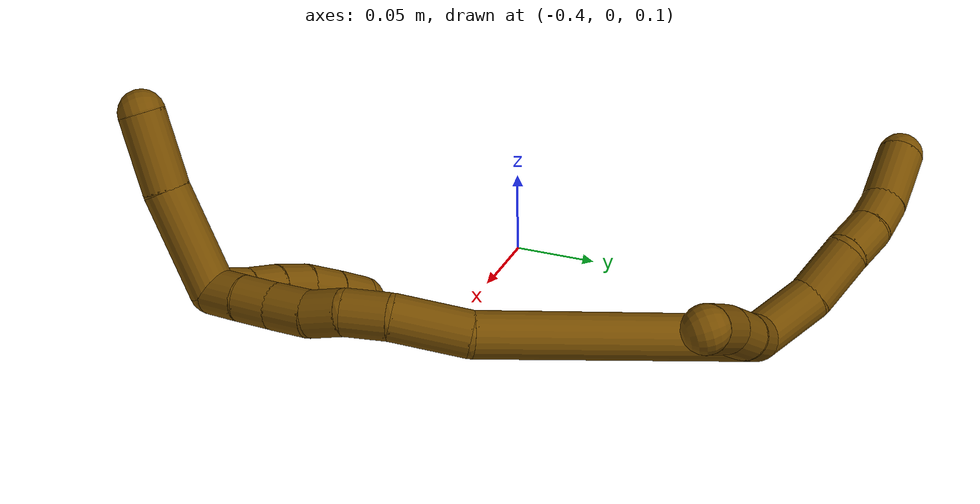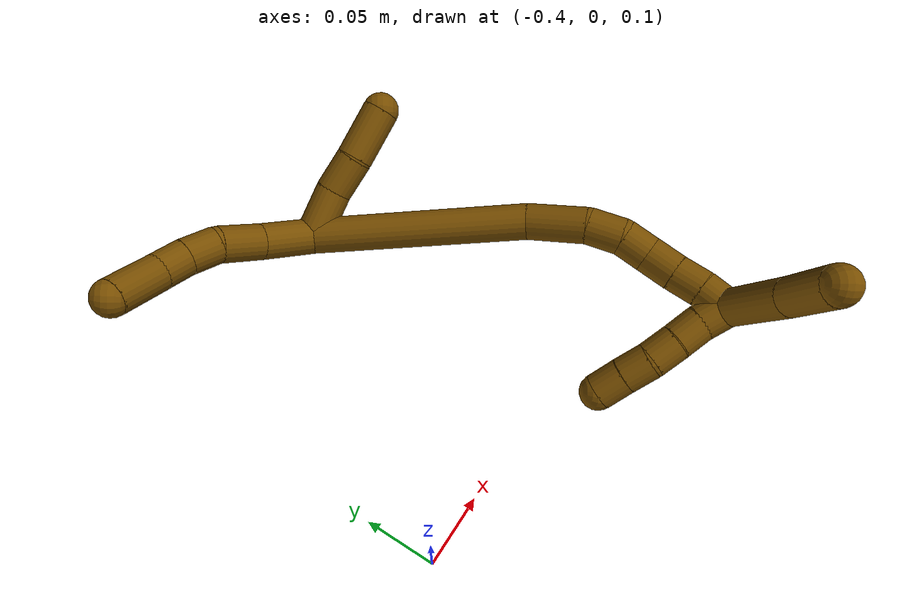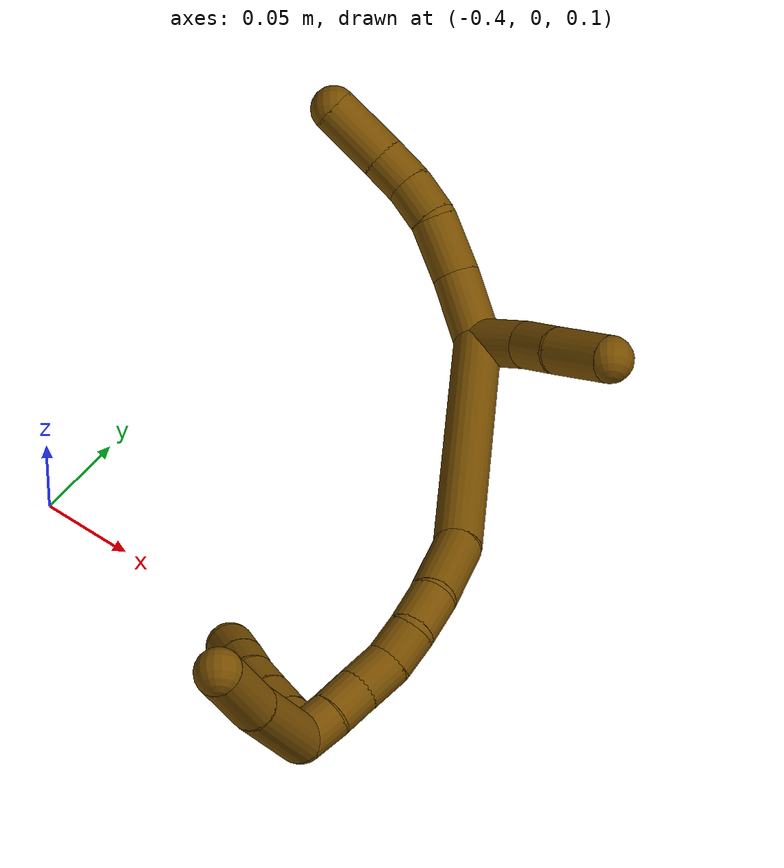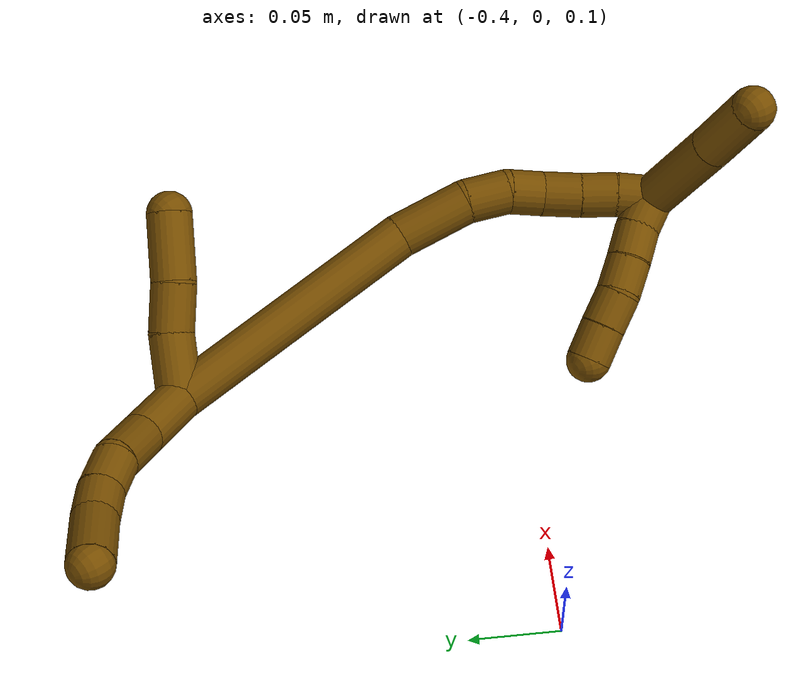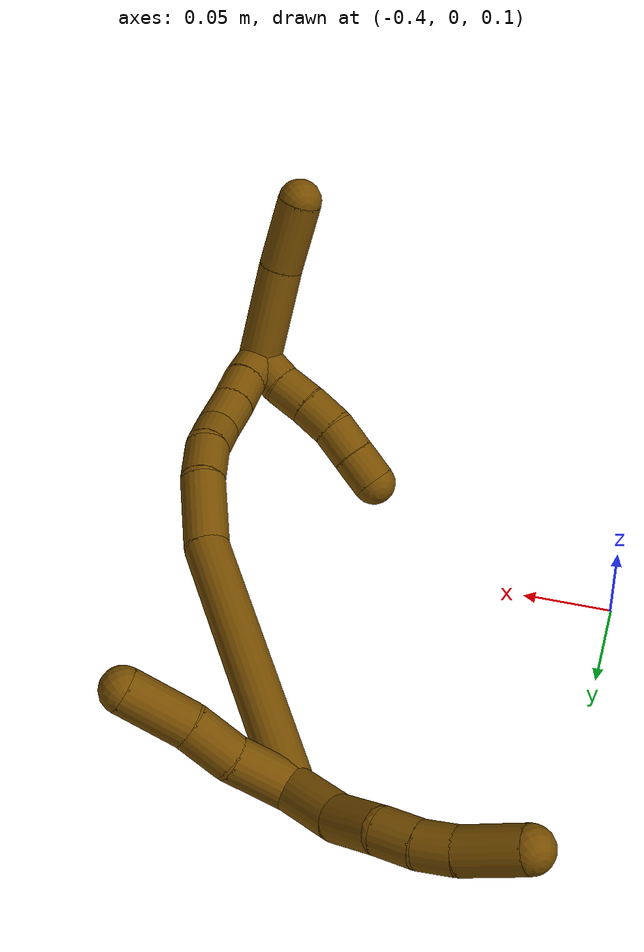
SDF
<sdf version="1.7">
 <world name="default">
  <model name="12">
   <static>0</static>
   <link name="12">
    <collision name="collision-cylinder-e_1_2_8">
     <pose>-0.006177 0.000164 0.017946 -0.009129 -0.331471 0.001527</pose>
     <geometry><cylinder><radius>0.0125</radius><length>0.03796</length></cylinder></geometry>
     <surface>
      <friction><ode><mu>1.16</mu><mu2>1.16</mu2><slip1>0</slip1><slip2>0</slip2></ode></friction>
      <contact><ode><kp>1e+06</kp><kd>1</kd><max_vel>0</max_vel><min_depth>0.001</min_depth></ode></contact>
     </surface>
    </collision>
    <visual name="visual-cylinder-e_1_2_8">
     <pose>-0.006177 0.000164 0.017946 -0.009129 -0.331471 0.001527</pose>
     <geometry><cylinder><radius>0.0125</radius><length>0.03796</length></cylinder></geometry>
     <material><ambient>0.466667 0.301961 0 1</ambient></material>
    </visual>
    <collision name="collision-cylinder-e_2_8_9">
     <pose>-0.020158 -0.001864 0.049777 0.156535 -0.50682 -0.040616</pose>
     <geometry><cylinder><radius>0.0125</radius><length>0.032156</length></cylinder></geometry>
     <surface>
      <friction><ode><mu>1.16</mu><mu2>1.16</mu2><slip1>0</slip1><slip2>0</slip2></ode></friction>
      <contact><ode><kp>1e+06</kp><kd>1</kd><max_vel>0</max_vel><min_depth>0.001</min_depth></ode></contact>
     </surface>
    </collision>
    <visual name="visual-cylinder-e_2_8_9">
     <pose>-0.020158 -0.001864 0.049777 0.156535 -0.50682 -0.040616</pose>
     <geometry><cylinder><radius>0.0125</radius><length>0.032156</length></cylinder></geometry>
     <material><ambient>0.466667 0.301961 0 1</ambient></material>
    </visual>
    <collision name="collision-cylinder-e_3_9_10">
     <pose>-0.033899 -0.002044 0.073163 -0.208536 -0.548685 0.058887</pose>
     <geometry><cylinder><radius>0.0125</radius><length>0.022766</length></cylinder></geometry>
     <surface>
      <friction><ode><mu>1.16</mu><mu2>1.16</mu2><slip1>0</slip1><slip2>0</slip2></ode></friction>
      <contact><ode><kp>1e+06</kp><kd>1</kd><max_vel>0</max_vel><min_depth>0.001</min_depth></ode></contact>
     </surface>
    </collision>
    <visual name="visual-cylinder-e_3_9_10">
     <pose>-0.033899 -0.002044 0.073163 -0.208536 -0.548685 0.058887</pose>
     <geometry><cylinder><radius>0.0125</radius><length>0.022766</length></cylinder></geometry>
     <material><ambient>0.466667 0.301961 0 1</ambient></material>
    </visual>
    <collision name="collision-cylinder-e_4_10_11">
     <pose>-0.046694 0.00189 0.090193 -0.250177 -0.723201 0.09505</pose>
     <geometry><cylinder><radius>0.0125</radius><length>0.020727</length></cylinder></geometry>
     <surface>
      <friction><ode><mu>1.16</mu><mu2>1.16</mu2><slip1>0</slip1><slip2>0</slip2></ode></friction>
      <contact><ode><kp>1e+06</kp><kd>1</kd><max_vel>0</max_vel><min_depth>0.001</min_depth></ode></contact>
     </surface>
    </collision>
    <visual name="visual-cylinder-e_4_10_11">
     <pose>-0.046694 0.00189 0.090193 -0.250177 -0.723201 0.09505</pose>
     <geometry><cylinder><radius>0.0125</radius><length>0.020727</length></cylinder></geometry>
     <material><ambient>0.466667 0.301961 0 1</ambient></material>
    </visual>
    <collision name="collision-cylinder-e_5_11_6">
     <pose>-0.067369 0.005073 0.109494 -0.106623 -0.862234 0.049081</pose>
     <geometry><cylinder><radius>0.0125</radius><length>0.036392</length></cylinder></geometry>
     <surface>
      <friction><ode><mu>1.16</mu><mu2>1.16</mu2><slip1>0</slip1><slip2>0</slip2></ode></friction>
      <contact><ode><kp>1e+06</kp><kd>1</kd><max_vel>0</max_vel><min_depth>0.001</min_depth></ode></contact>
     </surface>
    </collision>
    <visual name="visual-cylinder-e_5_11_6">
     <pose>-0.067369 0.005073 0.109494 -0.106623 -0.862234 0.049081</pose>
     <geometry><cylinder><radius>0.0125</radius><length>0.036392</length></cylinder></geometry>
     <material><ambient>0.466667 0.301961 0 1</ambient></material>
    </visual>
    <collision name="collision-cylinder-e_1_2_12">
     <pose>0.006181 -0.015153 -0.006405 1.97069 0.359382 0.534846</pose>
     <geometry><cylinder><radius>0.0125</radius><length>0.035148</length></cylinder></geometry>
     <surface>
      <friction><ode><mu>1.16</mu><mu2>1.16</mu2><slip1>0</slip1><slip2>0</slip2></ode></friction>
      <contact><ode><kp>1e+06</kp><kd>1</kd><max_vel>0</max_vel><min_depth>0.001</min_depth></ode></contact>
     </surface>
    </collision>
    <visual name="visual-cylinder-e_1_2_12">
     <pose>0.006181 -0.015153 -0.006405 1.97069 0.359382 0.534846</pose>
     <geometry><cylinder><radius>0.0125</radius><length>0.035148</length></cylinder></geometry>
     <material><ambient>0.466667 0.301961 0 1</ambient></material>
    </visual>
    <collision name="collision-cylinder-e_2_12_13">
     <pose>0.014993 -0.042026 -0.019157 2.06719 0.194938 0.325416</pose>
     <geometry><cylinder><radius>0.0125</radius><length>0.02717</length></cylinder></geometry>
     <surface>
      <friction><ode><mu>1.16</mu><mu2>1.16</mu2><slip1>0</slip1><slip2>0</slip2></ode></friction>
      <contact><ode><kp>1e+06</kp><kd>1</kd><max_vel>0</max_vel><min_depth>0.001</min_depth></ode></contact>
     </surface>
    </collision>
    <visual name="visual-cylinder-e_2_12_13">
     <pose>0.014993 -0.042026 -0.019157 2.06719 0.194938 0.325416</pose>
     <geometry><cylinder><radius>0.0125</radius><length>0.02717</length></cylinder></geometry>
     <material><ambient>0.466667 0.301961 0 1</ambient></material>
    </visual>
    <collision name="collision-cylinder-e_3_13_5">
     <pose>0.024068 -0.069475 -0.033631 2.04768 0.349029 0.563664</pose>
     <geometry><cylinder><radius>0.0125</radius><length>0.037682</length></cylinder></geometry>
     <surface>
      <friction><ode><mu>1.16</mu><mu2>1.16</mu2><slip1>0</slip1><slip2>0</slip2></ode></friction>
      <contact><ode><kp>1e+06</kp><kd>1</kd><max_vel>0</max_vel><min_depth>0.001</min_depth></ode></contact>
     </surface>
    </collision>
    <visual name="visual-cylinder-e_3_13_5">
     <pose>0.024068 -0.069475 -0.033631 2.04768 0.349029 0.563664</pose>
     <geometry><cylinder><radius>0.0125</radius><length>0.037682</length></cylinder></geometry>
     <material><ambient>0.466667 0.301961 0 1</ambient></material>
    </visual>
    <collision name="collision-cylinder-e_1_2_14">
     <pose>-0.017221 -0.019904 -0.071192 2.86897 -0.228882 -1.395</pose>
     <geometry><cylinder><radius>0.0125</radius><length>0.151803</length></cylinder></geometry>
     <surface>
      <friction><ode><mu>1.16</mu><mu2>1.16</mu2><slip1>0</slip1><slip2>0</slip2></ode></friction>
      <contact><ode><kp>1e+06</kp><kd>1</kd><max_vel>0</max_vel><min_depth>0.001</min_depth></ode></contact>
     </surface>
    </collision>
    <visual name="visual-cylinder-e_1_2_14">
     <pose>-0.017221 -0.019904 -0.071192 2.86897 -0.228882 -1.395</pose>
     <geometry><cylinder><radius>0.0125</radius><length>0.151803</length></cylinder></geometry>
     <material><ambient>0.466667 0.301961 0 1</ambient></material>
    </visual>
    <collision name="collision-cylinder-e_2_14_15">
     <pose>-0.044142 -0.044548 -0.160263 2.88243 -0.48297 -2.1683</pose>
     <geometry><cylinder><radius>0.0125</radius><length>0.041772</length></cylinder></geometry>
     <surface>
      <friction><ode><mu>1.16</mu><mu2>1.16</mu2><slip1>0</slip1><slip2>0</slip2></ode></friction>
      <contact><ode><kp>1e+06</kp><kd>1</kd><max_vel>0</max_vel><min_depth>0.001</min_depth></ode></contact>
     </surface>
    </collision>
    <visual name="visual-cylinder-e_2_14_15">
     <pose>-0.044142 -0.044548 -0.160263 2.88243 -0.48297 -2.1683</pose>
     <geometry><cylinder><radius>0.0125</radius><length>0.041772</length></cylinder></geometry>
     <material><ambient>0.466667 0.301961 0 1</ambient></material>
    </visual>
    <collision name="collision-cylinder-e_3_15_16">
     <pose>-0.05978 -0.048981 -0.188623 -3.11235 -0.515312 3.03073</pose>
     <geometry><cylinder><radius>0.0125</radius><length>0.0241</length></cylinder></geometry>
     <surface>
      <friction><ode><mu>1.16</mu><mu2>1.16</mu2><slip1>0</slip1><slip2>0</slip2></ode></friction>
      <contact><ode><kp>1e+06</kp><kd>1</kd><max_vel>0</max_vel><min_depth>0.001</min_depth></ode></contact>
     </surface>
    </collision>
    <visual name="visual-cylinder-e_3_15_16">
     <pose>-0.05978 -0.048981 -0.188623 -3.11235 -0.515312 3.03073</pose>
     <geometry><cylinder><radius>0.0125</radius><length>0.0241</length></cylinder></geometry>
     <material><ambient>0.466667 0.301961 0 1</ambient></material>
    </visual>
    <collision name="collision-cylinder-e_4_16_17">
     <pose>-0.070466 -0.04533 -0.207337 -2.75566 -0.490691 1.81628</pose>
     <geometry><cylinder><radius>0.0125</radius><length>0.020151</length></cylinder></geometry>
     <surface>
      <friction><ode><mu>1.16</mu><mu2>1.16</mu2><slip1>0</slip1><slip2>0</slip2></ode></friction>
      <contact><ode><kp>1e+06</kp><kd>1</kd><max_vel>0</max_vel><min_depth>0.001</min_depth></ode></contact>
     </surface>
    </collision>
    <visual name="visual-cylinder-e_4_16_17">
     <pose>-0.070466 -0.04533 -0.207337 -2.75566 -0.490691 1.81628</pose>
     <geometry><cylinder><radius>0.0125</radius><length>0.020151</length></cylinder></geometry>
     <material><ambient>0.466667 0.301961 0 1</ambient></material>
    </visual>
    <collision name="collision-cylinder-e_5_17_18">
     <pose>-0.082498 -0.039477 -0.223454 -2.83373 -0.721858 2.3616</pose>
     <geometry><cylinder><radius>0.0125</radius><length>0.022046</length></cylinder></geometry>
     <surface>
      <friction><ode><mu>1.16</mu><mu2>1.16</mu2><slip1>0</slip1><slip2>0</slip2></ode></friction>
      <contact><ode><kp>1e+06</kp><kd>1</kd><max_vel>0</max_vel><min_depth>0.001</min_depth></ode></contact>
     </surface>
    </collision>
    <visual name="visual-cylinder-e_5_17_18">
     <pose>-0.082498 -0.039477 -0.223454 -2.83373 -0.721858 2.3616</pose>
     <geometry><cylinder><radius>0.0125</radius><length>0.022046</length></cylinder></geometry>
     <material><ambient>0.466667 0.301961 0 1</ambient></material>
    </visual>
    <collision name="collision-cylinder-e_6_18_19">
     <pose>-0.09642 -0.035261 -0.238692 -2.91312 -0.721335 2.55098</pose>
     <geometry><cylinder><radius>0.0125</radius><length>0.020105</length></cylinder></geometry>
     <surface>
      <friction><ode><mu>1.16</mu><mu2>1.16</mu2><slip1>0</slip1><slip2>0</slip2></ode></friction>
      <contact><ode><kp>1e+06</kp><kd>1</kd><max_vel>0</max_vel><min_depth>0.001</min_depth></ode></contact>
     </surface>
    </collision>
    <visual name="visual-cylinder-e_6_18_19">
     <pose>-0.09642 -0.035261 -0.238692 -2.91312 -0.721335 2.55098</pose>
     <geometry><cylinder><radius>0.0125</radius><length>0.020105</length></cylinder></geometry>
     <material><ambient>0.466667 0.301961 0 1</ambient></material>
    </visual>
    <collision name="collision-cylinder-e_7_19_1">
     <pose>-0.109958 -0.030963 -0.252822 -2.77679 -0.760254 2.27662</pose>
     <geometry><cylinder><radius>0.0125</radius><length>0.020024</length></cylinder></geometry>
     <surface>
      <friction><ode><mu>1.16</mu><mu2>1.16</mu2><slip1>0</slip1><slip2>0</slip2></ode></friction>
      <contact><ode><kp>1e+06</kp><kd>1</kd><max_vel>0</max_vel><min_depth>0.001</min_depth></ode></contact>
     </surface>
    </collision>
    <visual name="visual-cylinder-e_7_19_1">
     <pose>-0.109958 -0.030963 -0.252822 -2.77679 -0.760254 2.27662</pose>
     <geometry><cylinder><radius>0.0125</radius><length>0.020024</length></cylinder></geometry>
     <material><ambient>0.466667 0.301961 0 1</ambient></material>
    </visual>
    <collision name="collision-cylinder-e_1_1_20">
     <pose>-0.117471 -0.022419 -0.25159 -0.639318 -0.061409 0.020333</pose>
     <geometry><cylinder><radius>0.0125</radius><length>0.02</length></cylinder></geometry>
     <surface>
      <friction><ode><mu>1.16</mu><mu2>1.16</mu2><slip1>0</slip1><slip2>0</slip2></ode></friction>
      <contact><ode><kp>1e+06</kp><kd>1</kd><max_vel>0</max_vel><min_depth>0.001</min_depth></ode></contact>
     </surface>
    </collision>
    <visual name="visual-cylinder-e_1_1_20">
     <pose>-0.117471 -0.022419 -0.25159 -0.639318 -0.061409 0.020333</pose>
     <geometry><cylinder><radius>0.0125</radius><length>0.02</length></cylinder></geometry>
     <material><ambient>0.466667 0.301961 0 1</ambient></material>
    </visual>
    <collision name="collision-cylinder-e_2_20_21">
     <pose>-0.120316 -0.010307 -0.236022 -0.683591 -0.225057 0.080362</pose>
     <geometry><cylinder><radius>0.0125</radius><length>0.02</length></cylinder></geometry>
     <surface>
      <friction><ode><mu>1.16</mu><mu2>1.16</mu2><slip1>0</slip1><slip2>0</slip2></ode></friction>
      <contact><ode><kp>1e+06</kp><kd>1</kd><max_vel>0</max_vel><min_depth>0.001</min_depth></ode></contact>
     </surface>
    </collision>
    <visual name="visual-cylinder-e_2_20_21">
     <pose>-0.120316 -0.010307 -0.236022 -0.683591 -0.225057 0.080362</pose>
     <geometry><cylinder><radius>0.0125</radius><length>0.02</length></cylinder></geometry>
     <material><ambient>0.466667 0.301961 0 1</ambient></material>
    </visual>
    <collision name="collision-cylinder-e_3_21_22">
     <pose>-0.124063 0.002335 -0.221005 -0.715701 -0.15208 0.056965</pose>
     <geometry><cylinder><radius>0.0125</radius><length>0.02</length></cylinder></geometry>
     <surface>
      <friction><ode><mu>1.16</mu><mu2>1.16</mu2><slip1>0</slip1><slip2>0</slip2></ode></friction>
      <contact><ode><kp>1e+06</kp><kd>1</kd><max_vel>0</max_vel><min_depth>0.001</min_depth></ode></contact>
     </surface>
    </collision>
    <visual name="visual-cylinder-e_3_21_22">
     <pose>-0.124063 0.002335 -0.221005 -0.715701 -0.15208 0.056965</pose>
     <geometry><cylinder><radius>0.0125</radius><length>0.02</length></cylinder></geometry>
     <material><ambient>0.466667 0.301961 0 1</ambient></material>
    </visual>
    <collision name="collision-cylinder-e_4_22_23">
     <pose>-0.12515 0.015679 -0.206281 -0.756589 0.042795 -0.017011</pose>
     <geometry><cylinder><radius>0.0125</radius><length>0.02</length></cylinder></geometry>
     <surface>
      <friction><ode><mu>1.16</mu><mu2>1.16</mu2><slip1>0</slip1><slip2>0</slip2></ode></friction>
      <contact><ode><kp>1e+06</kp><kd>1</kd><max_vel>0</max_vel><min_depth>0.001</min_depth></ode></contact>
     </surface>
    </collision>
    <visual name="visual-cylinder-e_4_22_23">
     <pose>-0.12515 0.015679 -0.206281 -0.756589 0.042795 -0.017011</pose>
     <geometry><cylinder><radius>0.0125</radius><length>0.02</length></cylinder></geometry>
     <material><ambient>0.466667 0.301961 0 1</ambient></material>
    </visual>
    <collision name="collision-cylinder-e_5_23_4">
     <pose>-0.124301 0.029708 -0.192059 -0.80057 0.042114 -0.017822</pose>
     <geometry><cylinder><radius>0.0125</radius><length>0.02</length></cylinder></geometry>
     <surface>
      <friction><ode><mu>1.16</mu><mu2>1.16</mu2><slip1>0</slip1><slip2>0</slip2></ode></friction>
      <contact><ode><kp>1e+06</kp><kd>1</kd><max_vel>0</max_vel><min_depth>0.001</min_depth></ode></contact>
     </surface>
    </collision>
    <visual name="visual-cylinder-e_5_23_4">
     <pose>-0.124301 0.029708 -0.192059 -0.80057 0.042114 -0.017822</pose>
     <geometry><cylinder><radius>0.0125</radius><length>0.02</length></cylinder></geometry>
     <material><ambient>0.466667 0.301961 0 1</ambient></material>
    </visual>
    <collision name="collision-cylinder-e_1_1_24">
     <pose>-0.138952 -0.046948 -0.262558 1.72875 -0.865567 -0.992439</pose>
     <geometry><cylinder><radius>0.0125</radius><length>0.058032</length></cylinder></geometry>
     <surface>
      <friction><ode><mu>1.16</mu><mu2>1.16</mu2><slip1>0</slip1><slip2>0</slip2></ode></friction>
      <contact><ode><kp>1e+06</kp><kd>1</kd><max_vel>0</max_vel><min_depth>0.001</min_depth></ode></contact>
     </surface>
    </collision>
    <visual name="visual-cylinder-e_1_1_24">
     <pose>-0.138952 -0.046948 -0.262558 1.72875 -0.865567 -0.992439</pose>
     <geometry><cylinder><radius>0.0125</radius><length>0.058032</length></cylinder></geometry>
     <material><ambient>0.466667 0.301961 0 1</ambient></material>
    </visual>
    <collision name="collision-cylinder-e_2_24_3">
     <pose>-0.177005 -0.079143 -0.265146 1.5436 -0.864127 -0.843627</pose>
     <geometry><cylinder><radius>0.0125</radius><length>0.041968</length></cylinder></geometry>
     <surface>
      <friction><ode><mu>1.16</mu><mu2>1.16</mu2><slip1>0</slip1><slip2>0</slip2></ode></friction>
      <contact><ode><kp>1e+06</kp><kd>1</kd><max_vel>0</max_vel><min_depth>0.001</min_depth></ode></contact>
     </surface>
    </collision>
    <visual name="visual-cylinder-e_2_24_3">
     <pose>-0.177005 -0.079143 -0.265146 1.5436 -0.864127 -0.843627</pose>
     <geometry><cylinder><radius>0.0125</radius><length>0.041968</length></cylinder></geometry>
     <material><ambient>0.466667 0.301961 0 1</ambient></material>
    </visual>
    <collision name="collision-sphere-3">
     <pose>-0.192964 -0.092763 -0.264776 0 -0 0</pose>
     <geometry><sphere><radius>0.0125</radius></sphere></geometry>
     <surface>
      <friction><ode><mu>1.16</mu><mu2>1.16</mu2><slip1>0</slip1><slip2>0</slip2></ode></friction>
      <contact><ode><kp>1e+06</kp><kd>1</kd><max_vel>0</max_vel><min_depth>0.001</min_depth></ode></contact>
     </surface>
    </collision>
    <visual name="visual-sphere-3">
     <pose>-0.192964 -0.092763 -0.264776 0 -0 0</pose>
     <geometry><sphere><radius>0.0125</radius></sphere></geometry>
     <material><ambient>0.466667 0.301961 0 1</ambient></material>
    </visual>
    <collision name="collision-sphere-24">
     <pose>-0.161046 -0.065523 -0.265517 0 -0 0</pose>
     <geometry><sphere><radius>0.0125</radius></sphere></geometry>
     <surface>
      <friction><ode><mu>1.16</mu><mu2>1.16</mu2><slip1>0</slip1><slip2>0</slip2></ode></friction>
      <contact><ode><kp>1e+06</kp><kd>1</kd><max_vel>0</max_vel><min_depth>0.001</min_depth></ode></contact>
     </surface>
    </collision>
    <visual name="visual-sphere-24">
     <pose>-0.161046 -0.065523 -0.265517 0 -0 0</pose>
     <geometry><sphere><radius>0.0125</radius></sphere></geometry>
     <material><ambient>0.466667 0.301961 0 1</ambient></material>
    </visual>
    <collision name="collision-sphere-4">
     <pose>-0.12388 0.036879 -0.185102 0 -0 0</pose>
     <geometry><sphere><radius>0.0125</radius></sphere></geometry>
     <surface>
      <friction><ode><mu>1.16</mu><mu2>1.16</mu2><slip1>0</slip1><slip2>0</slip2></ode></friction>
      <contact><ode><kp>1e+06</kp><kd>1</kd><max_vel>0</max_vel><min_depth>0.001</min_depth></ode></contact>
     </surface>
    </collision>
    <visual name="visual-sphere-4">
     <pose>-0.12388 0.036879 -0.185102 0 -0 0</pose>
     <geometry><sphere><radius>0.0125</radius></sphere></geometry>
     <material><ambient>0.466667 0.301961 0 1</ambient></material>
    </visual>
    <collision name="collision-sphere-23">
     <pose>-0.124722 0.022537 -0.199016 0 -0 0</pose>
     <geometry><sphere><radius>0.0125</radius></sphere></geometry>
     <surface>
      <friction><ode><mu>1.16</mu><mu2>1.16</mu2><slip1>0</slip1><slip2>0</slip2></ode></friction>
      <contact><ode><kp>1e+06</kp><kd>1</kd><max_vel>0</max_vel><min_depth>0.001</min_depth></ode></contact>
     </surface>
    </collision>
    <visual name="visual-sphere-23">
     <pose>-0.124722 0.022537 -0.199016 0 -0 0</pose>
     <geometry><sphere><radius>0.0125</radius></sphere></geometry>
     <material><ambient>0.466667 0.301961 0 1</ambient></material>
    </visual>
    <collision name="collision-sphere-22">
     <pose>-0.125578 0.008821 -0.213546 0 -0 0</pose>
     <geometry><sphere><radius>0.0125</radius></sphere></geometry>
     <surface>
      <friction><ode><mu>1.16</mu><mu2>1.16</mu2><slip1>0</slip1><slip2>0</slip2></ode></friction>
      <contact><ode><kp>1e+06</kp><kd>1</kd><max_vel>0</max_vel><min_depth>0.001</min_depth></ode></contact>
     </surface>
    </collision>
    <visual name="visual-sphere-22">
     <pose>-0.125578 0.008821 -0.213546 0 -0 0</pose>
     <geometry><sphere><radius>0.0125</radius></sphere></geometry>
     <material><ambient>0.466667 0.301961 0 1</ambient></material>
    </visual>
    <collision name="collision-sphere-21">
     <pose>-0.122548 -0.004151 -0.228465 0 -0 0</pose>
     <geometry><sphere><radius>0.0125</radius></sphere></geometry>
     <surface>
      <friction><ode><mu>1.16</mu><mu2>1.16</mu2><slip1>0</slip1><slip2>0</slip2></ode></friction>
      <contact><ode><kp>1e+06</kp><kd>1</kd><max_vel>0</max_vel><min_depth>0.001</min_depth></ode></contact>
     </surface>
    </collision>
    <visual name="visual-sphere-21">
     <pose>-0.122548 -0.004151 -0.228465 0 -0 0</pose>
     <geometry><sphere><radius>0.0125</radius></sphere></geometry>
     <material><ambient>0.466667 0.301961 0 1</ambient></material>
    </visual>
    <collision name="collision-sphere-20">
     <pose>-0.118085 -0.016464 -0.24358 0 -0 0</pose>
     <geometry><sphere><radius>0.0125</radius></sphere></geometry>
     <surface>
      <friction><ode><mu>1.16</mu><mu2>1.16</mu2><slip1>0</slip1><slip2>0</slip2></ode></friction>
      <contact><ode><kp>1e+06</kp><kd>1</kd><max_vel>0</max_vel><min_depth>0.001</min_depth></ode></contact>
     </surface>
    </collision>
    <visual name="visual-sphere-20">
     <pose>-0.118085 -0.016464 -0.24358 0 -0 0</pose>
     <geometry><sphere><radius>0.0125</radius></sphere></geometry>
     <material><ambient>0.466667 0.301961 0 1</ambient></material>
    </visual>
    <collision name="collision-sphere-6">
     <pose>-0.081185 0.006334 0.121267 0 -0 0</pose>
     <geometry><sphere><radius>0.0125</radius></sphere></geometry>
     <surface>
      <friction><ode><mu>1.16</mu><mu2>1.16</mu2><slip1>0</slip1><slip2>0</slip2></ode></friction>
      <contact><ode><kp>1e+06</kp><kd>1</kd><max_vel>0</max_vel><min_depth>0.001</min_depth></ode></contact>
     </surface>
    </collision>
    <visual name="visual-sphere-6">
     <pose>-0.081185 0.006334 0.121267 0 -0 0</pose>
     <geometry><sphere><radius>0.0125</radius></sphere></geometry>
     <material><ambient>0.466667 0.301961 0 1</ambient></material>
    </visual>
    <collision name="collision-sphere-11">
     <pose>-0.053553 0.003813 0.09772 0 -0 0</pose>
     <geometry><sphere><radius>0.0125</radius></sphere></geometry>
     <surface>
      <friction><ode><mu>1.16</mu><mu2>1.16</mu2><slip1>0</slip1><slip2>0</slip2></ode></friction>
      <contact><ode><kp>1e+06</kp><kd>1</kd><max_vel>0</max_vel><min_depth>0.001</min_depth></ode></contact>
     </surface>
    </collision>
    <visual name="visual-sphere-11">
     <pose>-0.053553 0.003813 0.09772 0 -0 0</pose>
     <geometry><sphere><radius>0.0125</radius></sphere></geometry>
     <material><ambient>0.466667 0.301961 0 1</ambient></material>
    </visual>
    <collision name="collision-sphere-10">
     <pose>-0.039836 -3.4e-05 0.082665 0 -0 0</pose>
     <geometry><sphere><radius>0.0125</radius></sphere></geometry>
     <surface>
      <friction><ode><mu>1.16</mu><mu2>1.16</mu2><slip1>0</slip1><slip2>0</slip2></ode></friction>
      <contact><ode><kp>1e+06</kp><kd>1</kd><max_vel>0</max_vel><min_depth>0.001</min_depth></ode></contact>
     </surface>
    </collision>
    <visual name="visual-sphere-10">
     <pose>-0.039836 -3.4e-05 0.082665 0 -0 0</pose>
     <geometry><sphere><radius>0.0125</radius></sphere></geometry>
     <material><ambient>0.466667 0.301961 0 1</ambient></material>
    </visual>
    <collision name="collision-sphere-9">
     <pose>-0.027962 -0.004055 0.063662 0 -0 0</pose>
     <geometry><sphere><radius>0.0125</radius></sphere></geometry>
     <surface>
      <friction><ode><mu>1.16</mu><mu2>1.16</mu2><slip1>0</slip1><slip2>0</slip2></ode></friction>
      <contact><ode><kp>1e+06</kp><kd>1</kd><max_vel>0</max_vel><min_depth>0.001</min_depth></ode></contact>
     </surface>
    </collision>
    <visual name="visual-sphere-9">
     <pose>-0.027962 -0.004055 0.063662 0 -0 0</pose>
     <geometry><sphere><radius>0.0125</radius></sphere></geometry>
     <material><ambient>0.466667 0.301961 0 1</ambient></material>
    </visual>
    <collision name="collision-sphere-2">
     <geometry><sphere><radius>0.0125</radius></sphere></geometry>
     <surface>
      <friction><ode><mu>1.16</mu><mu2>1.16</mu2><slip1>0</slip1><slip2>0</slip2></ode></friction>
      <contact><ode><kp>1e+06</kp><kd>1</kd><max_vel>0</max_vel><min_depth>0.001</min_depth></ode></contact>
     </surface>
    </collision>
    <visual name="visual-sphere-2">
     <geometry><sphere><radius>0.0125</radius></sphere></geometry>
     <material><ambient>0.466667 0.301961 0 1</ambient></material>
    </visual>
    <collision name="collision-sphere-19">
     <pose>-0.103059 -0.033551 -0.246044 0 -0 0</pose>
     <geometry><sphere><radius>0.0125</radius></sphere></geometry>
     <surface>
      <friction><ode><mu>1.16</mu><mu2>1.16</mu2><slip1>0</slip1><slip2>0</slip2></ode></friction>
      <contact><ode><kp>1e+06</kp><kd>1</kd><max_vel>0</max_vel><min_depth>0.001</min_depth></ode></contact>
     </surface>
    </collision>
    <visual name="visual-sphere-19">
     <pose>-0.103059 -0.033551 -0.246044 0 -0 0</pose>
     <geometry><sphere><radius>0.0125</radius></sphere></geometry>
     <material><ambient>0.466667 0.301961 0 1</ambient></material>
    </visual>
    <collision name="collision-sphere-8">
     <pose>-0.012353 0.000328 0.035892 0 -0 0</pose>
     <geometry><sphere><radius>0.0125</radius></sphere></geometry>
     <surface>
      <friction><ode><mu>1.16</mu><mu2>1.16</mu2><slip1>0</slip1><slip2>0</slip2></ode></friction>
      <contact><ode><kp>1e+06</kp><kd>1</kd><max_vel>0</max_vel><min_depth>0.001</min_depth></ode></contact>
     </surface>
    </collision>
    <visual name="visual-sphere-8">
     <pose>-0.012353 0.000328 0.035892 0 -0 0</pose>
     <geometry><sphere><radius>0.0125</radius></sphere></geometry>
     <material><ambient>0.466667 0.301961 0 1</ambient></material>
    </visual>
    <collision name="collision-sphere-12">
     <pose>0.012361 -0.030307 -0.01281 0 -0 0</pose>
     <geometry><sphere><radius>0.0125</radius></sphere></geometry>
     <surface>
      <friction><ode><mu>1.16</mu><mu2>1.16</mu2><slip1>0</slip1><slip2>0</slip2></ode></friction>
      <contact><ode><kp>1e+06</kp><kd>1</kd><max_vel>0</max_vel><min_depth>0.001</min_depth></ode></contact>
     </surface>
    </collision>
    <visual name="visual-sphere-12">
     <pose>0.012361 -0.030307 -0.01281 0 -0 0</pose>
     <geometry><sphere><radius>0.0125</radius></sphere></geometry>
     <material><ambient>0.466667 0.301961 0 1</ambient></material>
    </visual>
    <collision name="collision-sphere-13">
     <pose>0.017624 -0.053745 -0.025504 0 -0 0</pose>
     <geometry><sphere><radius>0.0125</radius></sphere></geometry>
     <surface>
      <friction><ode><mu>1.16</mu><mu2>1.16</mu2><slip1>0</slip1><slip2>0</slip2></ode></friction>
      <contact><ode><kp>1e+06</kp><kd>1</kd><max_vel>0</max_vel><min_depth>0.001</min_depth></ode></contact>
     </surface>
    </collision>
    <visual name="visual-sphere-13">
     <pose>0.017624 -0.053745 -0.025504 0 -0 0</pose>
     <geometry><sphere><radius>0.0125</radius></sphere></geometry>
     <material><ambient>0.466667 0.301961 0 1</ambient></material>
    </visual>
    <collision name="collision-sphere-5">
     <pose>0.030511 -0.085204 -0.041758 0 -0 0</pose>
     <geometry><sphere><radius>0.0125</radius></sphere></geometry>
     <surface>
      <friction><ode><mu>1.16</mu><mu2>1.16</mu2><slip1>0</slip1><slip2>0</slip2></ode></friction>
      <contact><ode><kp>1e+06</kp><kd>1</kd><max_vel>0</max_vel><min_depth>0.001</min_depth></ode></contact>
     </surface>
    </collision>
    <visual name="visual-sphere-5">
     <pose>0.030511 -0.085204 -0.041758 0 -0 0</pose>
     <geometry><sphere><radius>0.0125</radius></sphere></geometry>
     <material><ambient>0.466667 0.301961 0 1</ambient></material>
    </visual>
    <collision name="collision-sphere-14">
     <pose>-0.034442 -0.039807 -0.142384 0 -0 0</pose>
     <geometry><sphere><radius>0.0125</radius></sphere></geometry>
     <surface>
      <friction><ode><mu>1.16</mu><mu2>1.16</mu2><slip1>0</slip1><slip2>0</slip2></ode></friction>
      <contact><ode><kp>1e+06</kp><kd>1</kd><max_vel>0</max_vel><min_depth>0.001</min_depth></ode></contact>
     </surface>
    </collision>
    <visual name="visual-sphere-14">
     <pose>-0.034442 -0.039807 -0.142384 0 -0 0</pose>
     <geometry><sphere><radius>0.0125</radius></sphere></geometry>
     <material><ambient>0.466667 0.301961 0 1</ambient></material>
    </visual>
    <collision name="collision-sphere-15">
     <pose>-0.053842 -0.049288 -0.178143 0 -0 0</pose>
     <geometry><sphere><radius>0.0125</radius></sphere></geometry>
     <surface>
      <friction><ode><mu>1.16</mu><mu2>1.16</mu2><slip1>0</slip1><slip2>0</slip2></ode></friction>
      <contact><ode><kp>1e+06</kp><kd>1</kd><max_vel>0</max_vel><min_depth>0.001</min_depth></ode></contact>
     </surface>
    </collision>
    <visual name="visual-sphere-15">
     <pose>-0.053842 -0.049288 -0.178143 0 -0 0</pose>
     <geometry><sphere><radius>0.0125</radius></sphere></geometry>
     <material><ambient>0.466667 0.301961 0 1</ambient></material>
    </visual>
    <collision name="collision-sphere-16">
     <pose>-0.065719 -0.048675 -0.199104 0 -0 0</pose>
     <geometry><sphere><radius>0.0125</radius></sphere></geometry>
     <surface>
      <friction><ode><mu>1.16</mu><mu2>1.16</mu2><slip1>0</slip1><slip2>0</slip2></ode></friction>
      <contact><ode><kp>1e+06</kp><kd>1</kd><max_vel>0</max_vel><min_depth>0.001</min_depth></ode></contact>
     </surface>
    </collision>
    <visual name="visual-sphere-16">
     <pose>-0.065719 -0.048675 -0.199104 0 -0 0</pose>
     <geometry><sphere><radius>0.0125</radius></sphere></geometry>
     <material><ambient>0.466667 0.301961 0 1</ambient></material>
    </visual>
    <collision name="collision-sphere-17">
     <pose>-0.075214 -0.041984 -0.21557 0 -0 0</pose>
     <geometry><sphere><radius>0.0125</radius></sphere></geometry>
     <surface>
      <friction><ode><mu>1.16</mu><mu2>1.16</mu2><slip1>0</slip1><slip2>0</slip2></ode></friction>
      <contact><ode><kp>1e+06</kp><kd>1</kd><max_vel>0</max_vel><min_depth>0.001</min_depth></ode></contact>
     </surface>
    </collision>
    <visual name="visual-sphere-17">
     <pose>-0.075214 -0.041984 -0.21557 0 -0 0</pose>
     <geometry><sphere><radius>0.0125</radius></sphere></geometry>
     <material><ambient>0.466667 0.301961 0 1</ambient></material>
    </visual>
    <collision name="collision-sphere-18">
     <pose>-0.089782 -0.03697 -0.231339 0 -0 0</pose>
     <geometry><sphere><radius>0.0125</radius></sphere></geometry>
     <surface>
      <friction><ode><mu>1.16</mu><mu2>1.16</mu2><slip1>0</slip1><slip2>0</slip2></ode></friction>
      <contact><ode><kp>1e+06</kp><kd>1</kd><max_vel>0</max_vel><min_depth>0.001</min_depth></ode></contact>
     </surface>
    </collision>
    <visual name="visual-sphere-18">
     <pose>-0.089782 -0.03697 -0.231339 0 -0 0</pose>
     <geometry><sphere><radius>0.0125</radius></sphere></geometry>
     <material><ambient>0.466667 0.301961 0 1</ambient></material>
    </visual>
    <collision name="collision-sphere-1">
     <pose>-0.116857 -0.028374 -0.2596 0 -0 0</pose>
     <geometry><sphere><radius>0.0125</radius></sphere></geometry>
     <surface>
      <friction><ode><mu>1.16</mu><mu2>1.16</mu2><slip1>0</slip1><slip2>0</slip2></ode></friction>
      <contact><ode><kp>1e+06</kp><kd>1</kd><max_vel>0</max_vel><min_depth>0.001</min_depth></ode></contact>
     </surface>
    </collision>
    <visual name="visual-sphere-1">
     <pose>-0.116857 -0.028374 -0.2596 0 -0 0</pose>
     <geometry><sphere><radius>0.0125</radius></sphere></geometry>
     <material><ambient>0.466667 0.301961 0 1</ambient></material>
    </visual>
    <inertial>
     <pose>-0.059384 -0.025454 -0.108971 0 -0 0</pose>
     <mass>0.75</mass>
     <inertia>
      <ixx>-0.000228</ixx>
      <ixy>0</ixy>
      <ixz>0</ixz>
      <iyy>-0.000288</iyy>
      <iyz>0</iyz>
      <izz>0.000195</izz>
     </inertia>
    </inertial>
   </link>
   <pose>-0.264246 0.189662 0.150885 -1.32314 0.460381 0.759897</pose>
  </model>
 </world>
</sdf>
